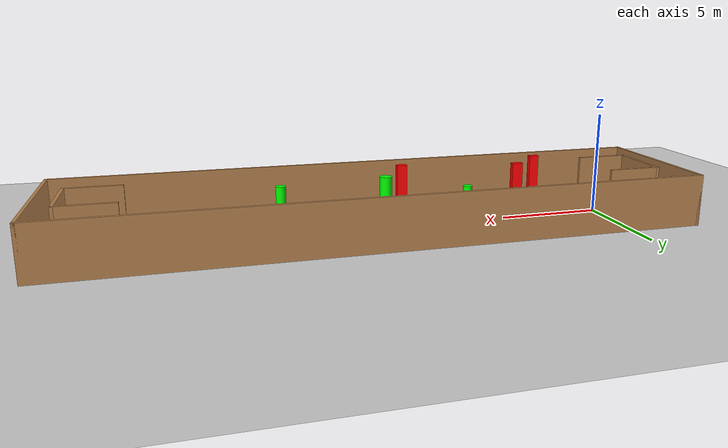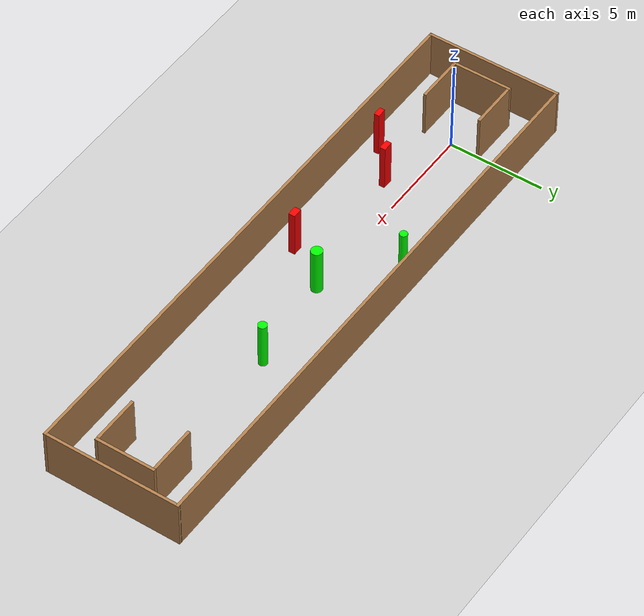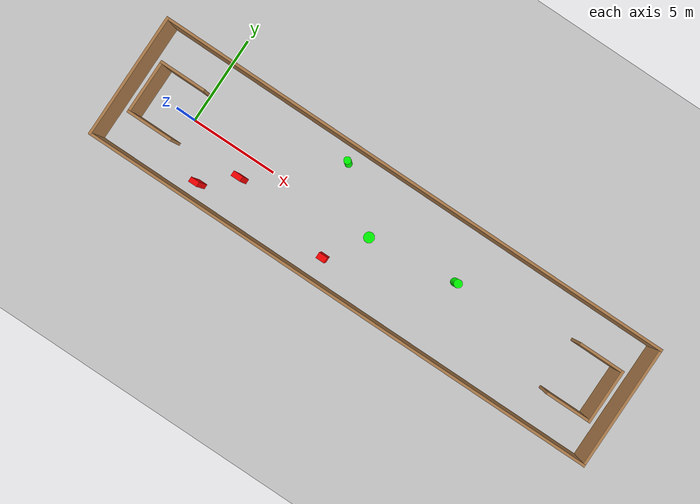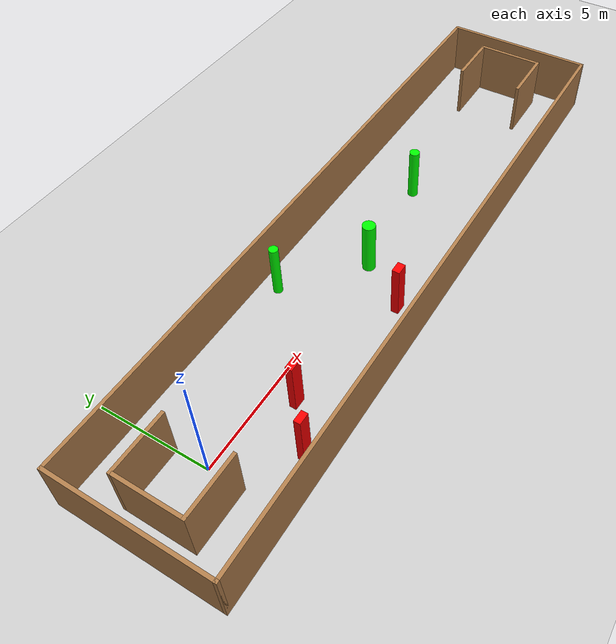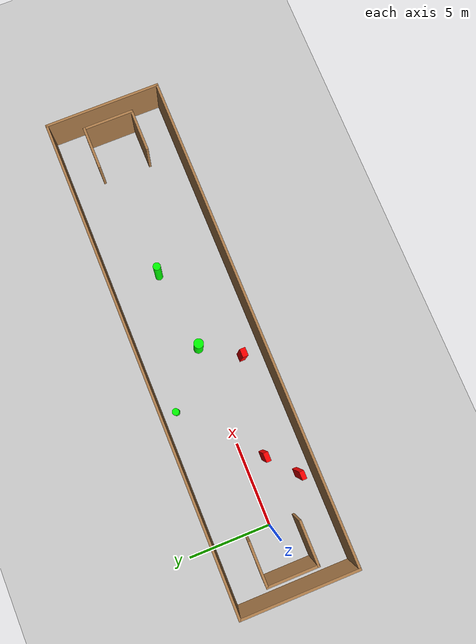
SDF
<sdf version="1.7">
 <world name="default">
  <light name="sun" type="directional">
   <pose>0 0 10 0 -0 0</pose>
   <diffuse>0.8 0.8 0.8 1</diffuse>
   <specular>0.2 0.2 0.2 1</specular>
   <attenuation>
    <range>1000</range>
    <constant>0.9</constant>
    <linear>0.01</linear>
    <quadratic>0.001</quadratic>
   </attenuation>
   <direction>-0.5 0.1 -0.9</direction>
   <spot><inner_angle>0</inner_angle><outer_angle>0</outer_angle><falloff>0</falloff></spot>
  </light>
  <model name="ground_plane">
   <static>1</static>
   <link name="link">
    <collision name="collision">
     <geometry><plane><normal>0 0 1</normal><size>100 100</size></plane></geometry>
     <surface>
      <contact><collide_bitmask>65535</collide_bitmask></contact>
      <friction><ode><mu>100</mu><mu2>50</mu2></ode></friction>
     </surface>
    </collision>
    <visual name="visual">
     <cast_shadows>0</cast_shadows>
     <geometry><plane><normal>0 0 1</normal><size>100 100</size></plane></geometry>
     <material>
      <script><uri>file://media/materials/scripts/gazebo.material</uri><name>Gazebo/Grey</name></script>
     </material>
    </visual>
   </link>
  </model>
  <gravity>0 0 -9.8</gravity>
  <magnetic_field>6e-06 2.3e-05 -4.2e-05</magnetic_field>
  <atmosphere type="adiabatic"/>
  <physics type="ode">
   <max_step_size>0.001</max_step_size>
   <real_time_factor>1</real_time_factor>
   <real_time_update_rate>1000</real_time_update_rate>
  </physics>
  <scene><ambient>0.4 0.4 0.4 1</ambient><background>0.7 0.7 0.7 1</background><shadows>1</shadows></scene>
  <spherical_coordinates>
   <surface_model>EARTH_WGS84</surface_model>
   <latitude_deg>0</latitude_deg>
   <longitude_deg>0</longitude_deg>
   <elevation>0</elevation>
   <heading_deg>0</heading_deg>
  </spherical_coordinates>
  <model name="my_base_walls">
   <link name="Wall_0">
    <collision name="Wall_0_Collision">
     <geometry><box><size>7.15 0.15 2.5</size></box></geometry>
     <pose>0 0 1.25 0 -0 0</pose>
    </collision>
    <visual name="Wall_0_Visual">
     <pose>0 0 1.25 0 -0 0</pose>
     <geometry><box><size>7.15 0.15 2.5</size></box></geometry>
     <material>
      <script><uri>file://media/materials/scripts/gazebo.material</uri><name>Gazebo/Wood</name></script>
      <ambient>1 1 1 1</ambient>
     </material>
     <meta><layer>0</layer></meta>
    </visual>
    <pose>-15 0 0 0 -0 1.5708</pose>
   </link>
   <link name="Wall_10">
    <collision name="Wall_10_Collision">
     <geometry><box><size>2.65 0.15 2.5</size></box></geometry>
     <pose>0 0 1.25 0 -0 0</pose>
    </collision>
    <visual name="Wall_10_Visual">
     <pose>0 0 1.25 0 -0 0</pose>
     <geometry><box><size>2.65 0.15 2.5</size></box></geometry>
     <material>
      <script><uri>file://media/materials/scripts/gazebo.material</uri><name>Gazebo/Wood</name></script>
      <ambient>1 1 1 1</ambient>
     </material>
     <meta><layer>0</layer></meta>
    </visual>
    <pose>-12.75 -1.5 0 0 -0 0</pose>
   </link>
   <link name="Wall_12">
    <collision name="Wall_12_Collision">
     <geometry><box><size>2.65 0.15 2.5</size></box></geometry>
     <pose>0 0 1.25 0 -0 0</pose>
    </collision>
    <visual name="Wall_12_Visual">
     <pose>0 0 1.25 0 -0 0</pose>
     <geometry><box><size>2.65 0.15 2.5</size></box></geometry>
     <material>
      <script><uri>file://media/materials/scripts/gazebo.material</uri><name>Gazebo/Wood</name></script>
      <ambient>1 1 1 1</ambient>
     </material>
     <meta><layer>0</layer></meta>
    </visual>
    <pose>-12.75 1.5 0 0 -0 0</pose>
   </link>
   <link name="Wall_14">
    <collision name="Wall_14_Collision">
     <geometry><box><size>3.15 0.15 2.5</size></box></geometry>
     <pose>0 0 1.25 0 -0 0</pose>
    </collision>
    <visual name="Wall_14_Visual">
     <pose>0 0 1.25 0 -0 0</pose>
     <geometry><box><size>3.15 0.15 2.5</size></box></geometry>
     <material>
      <script><uri>file://media/materials/scripts/gazebo.material</uri><name>Gazebo/Wood</name></script>
      <ambient>1 1 1 1</ambient>
     </material>
     <meta><layer>0</layer></meta>
    </visual>
    <pose>14 0 0 0 -0 -1.5708</pose>
   </link>
   <link name="Wall_15">
    <collision name="Wall_15_Collision">
     <geometry><box><size>2.65 0.15 2.5</size></box></geometry>
     <pose>0 0 1.25 0 -0 0</pose>
    </collision>
    <visual name="Wall_15_Visual">
     <pose>0 0 1.25 0 -0 0</pose>
     <geometry><box><size>2.65 0.15 2.5</size></box></geometry>
     <material>
      <script><uri>file://media/materials/scripts/gazebo.material</uri><name>Gazebo/Wood</name></script>
      <ambient>1 1 1 1</ambient>
     </material>
     <meta><layer>0</layer></meta>
    </visual>
    <pose>12.75 -1.5 0 0 -0 3.14159</pose>
   </link>
   <link name="Wall_17">
    <collision name="Wall_17_Collision">
     <geometry><box><size>2.65 0.15 2.5</size></box></geometry>
     <pose>0 0 1.25 0 -0 0</pose>
    </collision>
    <visual name="Wall_17_Visual">
     <pose>0 0 1.25 0 -0 0</pose>
     <geometry><box><size>2.65 0.15 2.5</size></box></geometry>
     <material>
      <script><uri>file://media/materials/scripts/gazebo.material</uri><name>Gazebo/Wood</name></script>
      <ambient>1 1 1 1</ambient>
     </material>
     <meta><layer>0</layer></meta>
    </visual>
    <pose>12.75 1.5 0 0 -0 3.14159</pose>
   </link>
   <link name="Wall_2">
    <collision name="Wall_2_Collision">
     <geometry><box><size>30.15 0.15 2.5</size></box></geometry>
     <pose>0 0 1.25 0 -0 0</pose>
    </collision>
    <visual name="Wall_2_Visual">
     <pose>0 0 1.25 0 -0 0</pose>
     <geometry><box><size>30.15 0.15 2.5</size></box></geometry>
     <material>
      <script><uri>file://media/materials/scripts/gazebo.material</uri><name>Gazebo/Wood</name></script>
      <ambient>1 1 1 1</ambient>
     </material>
     <meta><layer>0</layer></meta>
    </visual>
    <pose>-0 -3.5 0 0 -0 0</pose>
   </link>
   <link name="Wall_4">
    <collision name="Wall_4_Collision">
     <geometry><box><size>30.15 0.15 2.5</size></box></geometry>
     <pose>0 0 1.25 0 -0 0</pose>
    </collision>
    <visual name="Wall_4_Visual">
     <pose>0 0 1.25 0 -0 0</pose>
     <geometry><box><size>30.15 0.15 2.5</size></box></geometry>
     <material>
      <script><uri>file://media/materials/scripts/gazebo.material</uri><name>Gazebo/Wood</name></script>
      <ambient>1 1 1 1</ambient>
     </material>
     <meta><layer>0</layer></meta>
    </visual>
    <pose>-0 3.5 0 0 -0 0</pose>
   </link>
   <link name="Wall_6">
    <collision name="Wall_6_Collision">
     <geometry><box><size>7.15 0.15 2.5</size></box></geometry>
     <pose>0 0 1.25 0 -0 0</pose>
    </collision>
    <visual name="Wall_6_Visual">
     <pose>0 0 1.25 0 -0 0</pose>
     <geometry><box><size>7.15 0.15 2.5</size></box></geometry>
     <material>
      <script><uri>file://media/materials/scripts/gazebo.material</uri><name>Gazebo/Wood</name></script>
      <ambient>1 1 1 1</ambient>
     </material>
     <meta><layer>0</layer></meta>
    </visual>
    <pose>15 0 0 0 -0 -1.5708</pose>
   </link>
   <link name="Wall_9">
    <collision name="Wall_9_Collision">
     <geometry><box><size>3.15 0.15 2.5</size></box></geometry>
     <pose>0 0 1.25 0 -0 0</pose>
    </collision>
    <visual name="Wall_9_Visual">
     <pose>0 0 1.25 0 -0 0</pose>
     <geometry><box><size>3.15 0.15 2.5</size></box></geometry>
     <material>
      <script><uri>file://media/materials/scripts/gazebo.material</uri><name>Gazebo/Wood</name></script>
      <ambient>1 1 1 1</ambient>
     </material>
     <meta><layer>0</layer></meta>
    </visual>
    <pose>-14 0 0 0 -0 -1.5708</pose>
   </link>
   <static>1</static>
   <pose>11.5 0 0 0 -0 0</pose>
  </model>
  <model name="cylinder1">
   <static>1</static>
   <link name="link">
    <inertial>
     <mass>1</mass>
     <inertia><ixx>0.5</ixx><ixy>0</ixy><ixz>0</ixz><iyy>0.5</iyy><iyz>0</iyz><izz>1</izz></inertia>
    </inertial>
    <collision name="collision">
     <geometry><cylinder><radius>0.22866179112034127</radius><length>2.5</length></cylinder></geometry>
    </collision>
    <visual name="visual">
     <geometry><cylinder><radius>0.22866179112034127</radius><length>2.5</length></cylinder></geometry>
     <material>
      <ambient>0 1 0 1</ambient>
      <diffuse>0 1 0 1</diffuse>
      <specular>0.1 0.1 0.1 1</specular>
      <emissive>0 0 0 0</emissive>
     </material>
    </visual>
   </link>
   <pose>16.13345426028602 0.5648692867183582 1.25 0 0 0</pose>
  </model>
  <model name="cylinder2">
   <static>1</static>
   <link name="link">
    <inertial>
     <mass>1</mass>
     <inertia><ixx>0.5</ixx><ixy>0</ixy><ixz>0</ixz><iyy>0.5</iyy><iyz>0</iyz><izz>1</izz></inertia>
    </inertial>
    <collision name="collision">
     <geometry><cylinder><radius>0.20155111677834223</radius><length>2.5</length></cylinder></geometry>
    </collision>
    <visual name="visual">
     <geometry><cylinder><radius>0.20155111677834223</radius><length>2.5</length></cylinder></geometry>
     <material>
      <ambient>0 1 0 1</ambient>
      <diffuse>0 1 0 1</diffuse>
      <specular>0.1 0.1 0.1 1</specular>
      <emissive>0 0 0 0</emissive>
     </material>
    </visual>
   </link>
   <pose>8.02844414360135 2.611264587133223 1.25 0 0 0</pose>
  </model>
  <model name="cylinder3">
   <static>1</static>
   <link name="link">
    <inertial>
     <mass>1</mass>
     <inertia><ixx>0.5</ixx><ixy>0</ixy><ixz>0</ixz><iyy>0.5</iyy><iyz>0</iyz><izz>1</izz></inertia>
    </inertial>
    <collision name="collision">
     <geometry><cylinder><radius>0.2904456175864505</radius><length>2.5</length></cylinder></geometry>
    </collision>
    <visual name="visual">
     <geometry><cylinder><radius>0.2904456175864505</radius><length>2.5</length></cylinder></geometry>
     <material>
      <ambient>0 1 0 1</ambient>
      <diffuse>0 1 0 1</diffuse>
      <specular>0.1 0.1 0.1 1</specular>
      <emissive>0 0 0 0</emissive>
     </material>
    </visual>
   </link>
   <pose>11.103189531986503 -0.003503259991707086 1.25 0 0 0</pose>
  </model>
  <model name="box1">
   <static>1</static>
   <link name="link">
    <inertial>
     <mass>1</mass>
     <inertia><ixx>0.083</ixx><ixy>0</ixy><ixz>0</ixz><iyy>0.083</iyy><iyz>0</iyz><izz>0.083</izz></inertia>
    </inertial>
    <collision name="collision">
     <geometry><box><size>0.5074001208914127 0.33734773950770597 2.5</size></box></geometry>
    </collision>
    <visual name="visual">
     <geometry><box><size>0.5074001208914127 0.33734773950770597 2.5</size></box></geometry>
     <material>
      <ambient>1 0 0 1</ambient>
      <diffuse>1 0 0 1</diffuse>
      <specular>0.1 0.1 0.1 1</specular>
      <emissive>0 0 0 0</emissive>
     </material>
    </visual>
    <sensor name="my_contact" type="contact">
     <contact><collision>box_collision</collision><topic>__default_topic__</topic></contact>
    </sensor>
   </link>
   <pose>9.68698643345901 -2.1869445693816973 1.25 0 0 0</pose>
  </model>
  <model name="box2">
   <static>1</static>
   <link name="link">
    <inertial>
     <mass>1</mass>
     <inertia><ixx>0.083</ixx><ixy>0</ixy><ixz>0</ixz><iyy>0.083</iyy><iyz>0</iyz><izz>0.083</izz></inertia>
    </inertial>
    <collision name="collision">
     <geometry><box><size>0.4897019545936177 0.2795457528025288 2.5</size></box></geometry>
    </collision>
    <visual name="visual">
     <geometry><box><size>0.4897019545936177 0.2795457528025288 2.5</size></box></geometry>
     <material>
      <ambient>1 0 0 1</ambient>
      <diffuse>1 0 0 1</diffuse>
      <specular>0.1 0.1 0.1 1</specular>
      <emissive>0 0 0 0</emissive>
     </material>
    </visual>
    <sensor name="my_contact" type="contact">
     <contact><collision>box_collision</collision><topic>__default_topic__</topic></contact>
    </sensor>
   </link>
   <pose>2.206142889159702 -2.6007394909283565 1.25 0 0 0</pose>
  </model>
  <model name="box3">
   <static>1</static>
   <link name="link">
    <inertial>
     <mass>1</mass>
     <inertia><ixx>0.083</ixx><ixy>0</ixy><ixz>0</ixz><iyy>0.083</iyy><iyz>0</iyz><izz>0.083</izz></inertia>
    </inertial>
    <collision name="collision">
     <geometry><box><size>0.5418111797343184 0.29588362706903615 2.5</size></box></geometry>
    </collision>
    <visual name="visual">
     <geometry><box><size>0.5418111797343184 0.29588362706903615 2.5</size></box></geometry>
     <material>
      <ambient>1 0 0 1</ambient>
      <diffuse>1 0 0 1</diffuse>
      <specular>0.1 0.1 0.1 1</specular>
      <emissive>0 0 0 0</emissive>
     </material>
    </visual>
    <sensor name="my_contact" type="contact">
     <contact><collision>box_collision</collision><topic>__default_topic__</topic></contact>
    </sensor>
   </link>
   <pose>3.8476733827808083 -1.1543145101857357 1.25 0 0 0</pose>
  </model>
 </world>
</sdf>
